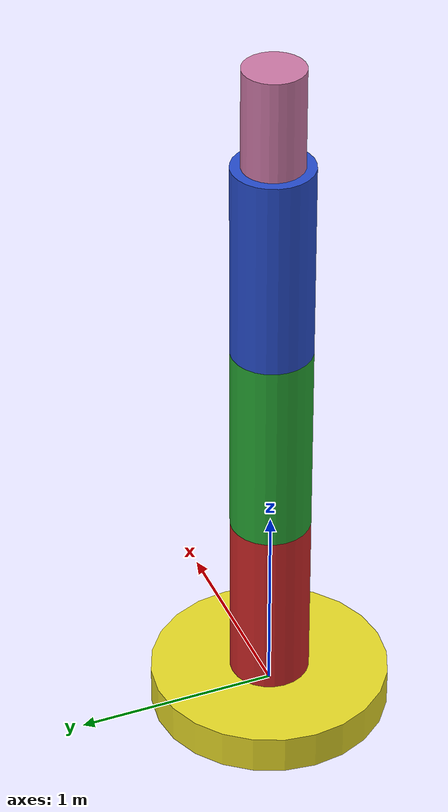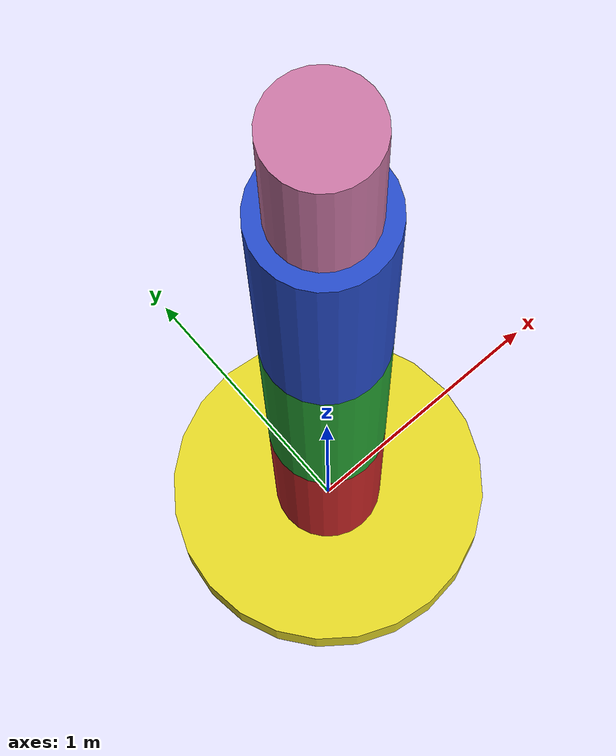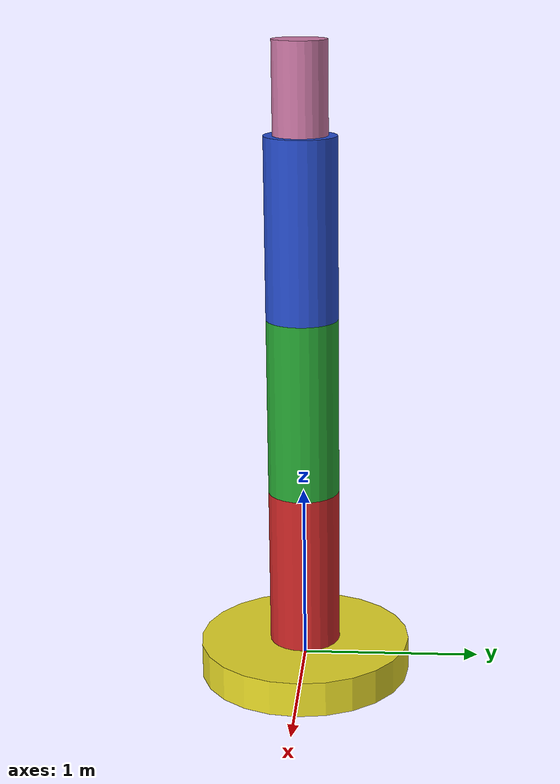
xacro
<?xml version="1.0"?>
<robot name="arm" xmlns:xacro="http://www.ros.org/wiki/xacro">

  <link name="world"/>

  <joint name="world_base_footprint_joint" type="fixed">
    <origin xyz="0 0 0" rpy="0 0 0" />
    <parent link="world"/>
    <child link="base_footprint"/>
  </joint>

  <link name="base_footprint" />
  <joint name="base_footprint_link_joint" type="fixed">
    <origin xyz="0 0 0" rpy="0 0 0" />
    <parent link="base_footprint"/>
    <child link="main_base"/>
  </joint>
  <link name="main_base">
    <visual>
      <origin xyz="0 0 0"/>
      <geometry>
        <cylinder length="0.2" radius="0.6"/>
      </geometry>
      <material name="yellow"/>
    </visual>
  </link>
  <joint name="base_stick1_joint" type="revolute">
    <origin xyz="0.0 0.0 0.0" rpy="0.0 0.0 0.0"/>
    <parent link="main_base"/>
    <child link="stick1"/>
    <limit lower="-3.14" upper="3.14" effort="1000" velocity="5.0"/>
    <axis xyz="0 0 1"/>
  </joint>
  <link name="stick1">
    <visual>
      <origin xyz="0 0 0.5"/>
      <geometry>
        <cylinder length="1" radius="0.2"/>
      </geometry>
      <material name="red"/>
    </visual>
  </link>
  <joint name="stick1_stick2_joint" type="revolute">
    <origin xyz="0.0 0.0 1" rpy="0.0 0.0 0.0"/>
    <parent link="stick1"/>
    <child link="stick2"/>
    <limit lower="-1.57" upper="1.57" effort="1000" velocity="5.0"/>
    <axis xyz="1 0 0"/>
  </joint>
  <link name="stick2">
    <visual>
      <origin xyz="0 0 0.5"/>
      <geometry>
        <cylinder length="1" radius="0.2"/>
      </geometry>
      <material name="green"/>
    </visual>
  </link>
  <joint name="stick2_stick3_joint" type="revolute">
    <origin xyz="0.0 0.0 1" rpy="0.0 0.0 0.0"/>
    <parent link="stick2"/>
    <child link="stick3"/>
    <limit lower="-1.57" upper="1.57" effort="1000" velocity="5.0"/>
    <axis xyz="1 0 0"/>
  </joint>
  <link name="stick3">
    <visual>
      <origin xyz="0 0 0.5"/>
      <geometry>
        <cylinder length="1" radius="0.2"/>
      </geometry>
      <material name="blue"/>
    </visual>
  </link>
  <joint name="stick3_stick4_joint" type="prismatic">
    <origin xyz="0.0 0.0 0.5" rpy="0.0 0.0 0.0"/>
    <parent link="stick3"/>
    <child link="stick4"/>
    <limit lower="-0.5" upper="0.5" effort="1000" velocity="5.0"/>
    <axis xyz="0 0 1"/>
  </joint>
  <link name="stick4">
    <visual>
      <origin xyz="0 0 0.5"/>
      <geometry>
        <cylinder length="1" radius="0.15"/>
      </geometry>
      <material name="puple"/>
    </visual>
  </link>
</robot>
